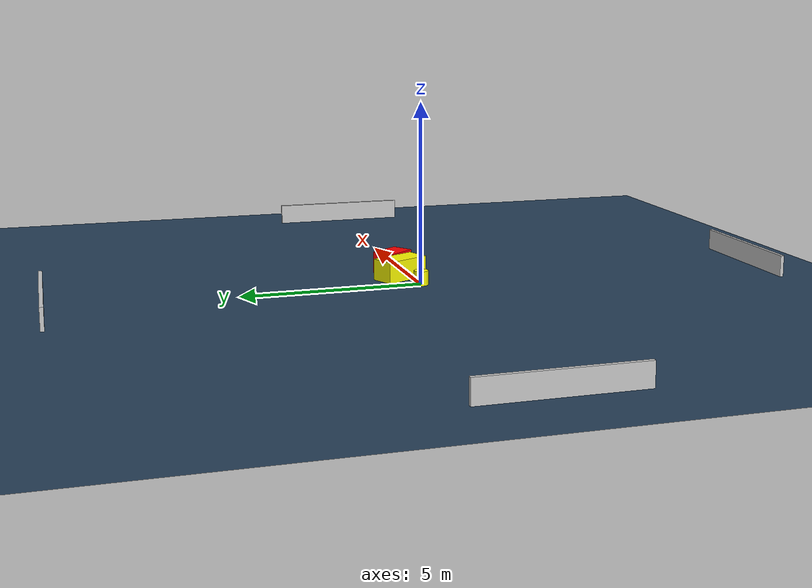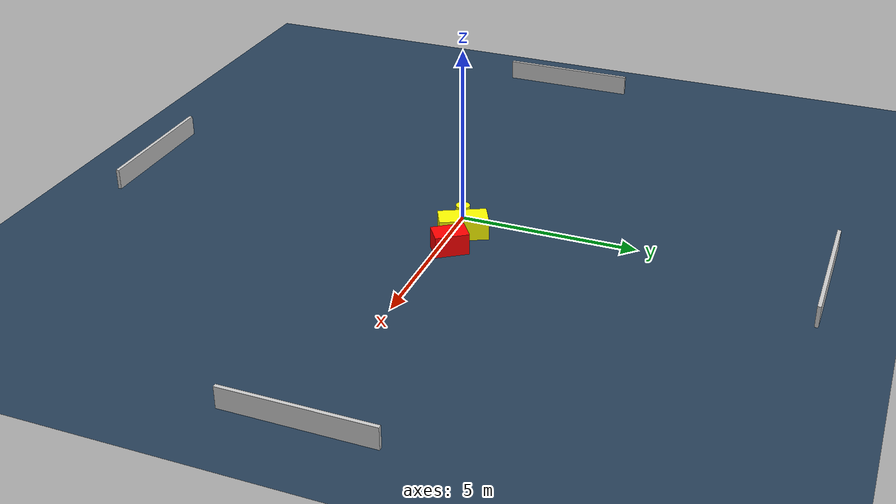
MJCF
<?xml version="1.0" ?>
<mujoco model="generated_environment">
  <option timestep="0.01" integrator="RK4" cone="elliptic"/>
  <default>
    <geom density="1"/>
  </default>
  <asset>
    <texture builtin="gradient" height="3072" name="skybox" rgb1="0.3 0.5 0.7" rgb2="0 0 0" type="skybox" width="512"/>
    <texture builtin="checker" height="300" name="groundplane" rgb1="0.2 0.3 0.4" rgb2="0.1 0.2 0.3" type="2d" width="300"/>
    <material name="groundplane" reflectance="0.2" texrepeat="5 5" texture="groundplane"/>
  </asset>
  <worldbody>
    <light dir="0 0 -1" directional="true" pos="0 0 1.5"/>
    <geom condim="3" friction="0.5 0.005 0.001" material="groundplane" name="floor" pos="0 0 0" size="0 0 0.05" type="plane"/>
    <body name="walls">
      <geom name="wall_1" condim="4" pos="-10.0 0.0 0.3" rgba="0.800000011920929 0.800000011920929 0.800000011920929 1.0" size="0.05 2.0 0.3" type="box"/>
      <geom name="wall_2" condim="4" pos="10.0 0.0 0.3" rgba="0.800000011920929 0.800000011920929 0.800000011920929 1.0" size="0.05 2.0 0.3" type="box"/>
      <geom name="wall_3" condim="4" pos="0.0 -10.0 0.3" rgba="0.800000011920929 0.800000011920929 0.800000011920929 1.0" size="2.0 0.05 0.3" type="box"/>
      <geom name="wall_4" condim="4" pos="0.0 10.0 0.3" rgba="0.800000011920929 0.800000011920929 0.800000011920929 1.0" size="2.0 0.05 0.3" type="box"/>
    </body>
    <body name="robot">
      <joint name="joint_x" type="slide" pos="0 0 0" axis="1 0 0"/>
      <joint name="joint_y" type="slide" pos="0 0 0" axis="0 1 0"/>
      <geom name="robot" type="cylinder" pos="0.0 0.0 0.2" size="0.2 0.2 0.0" mass="5.0" friction="1.0 0.005 0.0001" condim="4" rgba="1.0 1.0 0.0 1.0"/>
    </body>
    <body name="obstacle_1_movable">
      <geom name="obstacle_1_movable" condim="4" pos="0.8904465857413487 0.34505829396271587 0.3" euler="0 0 26.52012203207744" friction="0.0 0.005 0.001" rgba="1.0 1.0 0.0 1.0" size="0.33495720750252 0.6752651364011577 0.3" type="box" mass="0.1"/>
      <joint type="free"/>
    </body>
    <body name="obstacle_2_static">
      <geom name="obstacle_2_static" condim="4" pos="1.799807633065593 0.3169248250409975 0.3" euler="0 0 214.59632816872178" friction="0.0 0.005 0.001" rgba="1.0 0.0 0.0 1.0" size="0.32123625434125724 0.46768178258925697 0.3" type="box"/>
    </body>
  </worldbody>
  <actuator>
    <motor name="actuator_x" joint="joint_x" gear="1" ctrlrange="-1 1"/>
    <motor name="actuator_y" joint="joint_y" gear="1" ctrlrange="-1 1"/>
  </actuator>
</mujoco>
